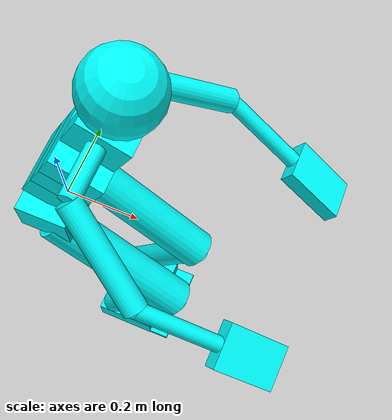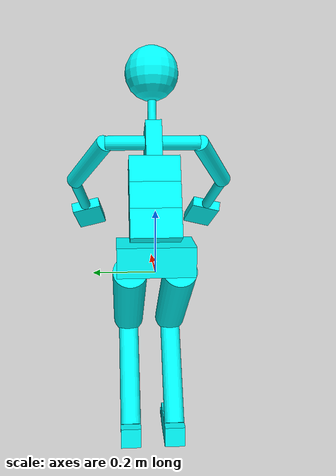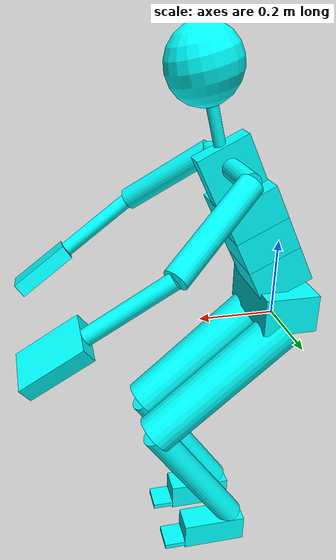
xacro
<?xml version='1.0' encoding='utf-8'?>
<robot name="seated_rider">
  <!-- Generated by scripts/generate_seated_rider.py from the uploaded colored 66-DoF URDF. Fixed preview pose; no pedaling/contact constraints. -->
  <link name="rider_Pelvis">
    <inertial>
      <mass value="4.976" />
      <origin xyz="0           0    0.049743" rpy="0 0 0" />
      <inertia ixx="0.029678" iyy="0.011854" izz="0.033653" ixy="0" ixz="0" iyz="0" />
    </inertial>
    <visual>
      <origin xyz="0           0    0.049743" rpy="0 0 0" />
      <geometry>
        <box size="0.13815     0.24914    0.097469" />
      </geometry>
      <material name="rider_Cyan">
        <color rgba="0 1.0 1.0 1.0" />
      </material>
    </visual>
    <collision>
      <origin xyz="0           0    0.049743" rpy="0 0 0" />
      <geometry>
        <box size="0.13815     0.24914    0.097469" />
      </geometry>
      <material name="rider_Cyan">
        <color rgba="0 1.0 1.0 1.0" />
      </material>
    </collision>
  </link>
  <link name="rider_L5_f1">
		</link>
  <link name="rider_L5_f2">
		</link>
  <link name="rider_L5">
    <inertial>
      <mass value="6.3444" />
      <origin xyz="0           0    0.047552" rpy="0 0 0" />
      <inertia ixx="0.018868" iyy="0.014872" izz="0.024177" ixy="0" ixz="0" iyz="0" />
    </inertial>
    <visual>
      <origin xyz="0           0    0.047552" rpy="0 0 0" />
      <geometry>
        <box size="0.13815     0.16323    0.095104" />
      </geometry>
      <material name="rider_Cyan">
        <color rgba="0 1.0 1.0 1.0" />
      </material>
    </visual>
    <collision>
      <origin xyz="0           0    0.047552" rpy="0 0 0" />
      <geometry>
        <box size="0.13815     0.16323    0.095104" />
      </geometry>
      <material name="rider_Cyan">
        <color rgba="0 1.0 1.0 1.0" />
      </material>
    </collision>
  </link>
  <link name="rider_L3_f1">
		</link>
  <link name="rider_L3_f2">
		</link>
  <link name="rider_L3">
    <inertial>
      <mass value="6.3444" />
      <origin xyz="0           0    0.042958" rpy="0 0 0" />
      <inertia ixx="0.017989" iyy="0.013993" izz="0.024177" ixy="0" ixz="0" iyz="0" />
    </inertial>
    <visual>
      <origin xyz="0           0    0.042958" rpy="0 0 0" />
      <geometry>
        <box size="0.13815     0.16323    0.085916" />
      </geometry>
      <material name="rider_Cyan">
        <color rgba="0 1.0 1.0 1.0" />
      </material>
    </visual>
    <collision>
      <origin xyz="0           0    0.042958" rpy="0 0 0" />
      <geometry>
        <box size="0.13815     0.16323    0.085916" />
      </geometry>
      <material name="rider_Cyan">
        <color rgba="0 1.0 1.0 1.0" />
      </material>
    </collision>
  </link>
  <link name="rider_T12_f1">
		</link>
  <link name="rider_T12_f2">
		</link>
  <link name="rider_T12">
    <inertial>
      <mass value="6.3444" />
      <origin xyz="0           0    0.042958" rpy="0 0 0" />
      <inertia ixx="0.017989" iyy="0.013993" izz="0.024177" ixy="0" ixz="0" iyz="0" />
    </inertial>
    <visual>
      <origin xyz="0           0    0.042958" rpy="0 0 0" />
      <geometry>
        <box size="0.13815     0.16323    0.085916" />
      </geometry>
      <material name="rider_Cyan">
        <color rgba="0 1.0 1.0 1.0" />
      </material>
    </visual>
    <collision>
      <origin xyz="0           0    0.042958" rpy="0 0 0" />
      <geometry>
        <box size="0.13815     0.16323    0.085916" />
      </geometry>
      <material name="rider_Cyan">
        <color rgba="0 1.0 1.0 1.0" />
      </material>
    </collision>
  </link>
  <link name="rider_T8_f1">
		</link>
  <link name="rider_T8_f2">
		</link>
  <link name="rider_T8">
    <inertial>
      <mass value="2.488" />
      <origin xyz="0           0    0.059874" rpy="0 0 0" />
      <inertia ixx="0.0035473" iyy="0.0067278" izz="0.0043289" ixy="0" ixz="0" iyz="0" />
    </inertial>
    <visual>
      <origin xyz="0           0    0.059874" rpy="0 0 0" />
      <geometry>
        <box size="0.13457    0.052626     0.11975" />
      </geometry>
      <material name="rider_Cyan">
        <color rgba="0 1.0 1.0 1.0" />
      </material>
    </visual>
    <collision>
      <origin xyz="0           0    0.059874" rpy="0 0 0" />
      <geometry>
        <box size="0.13457    0.052626     0.11975" />
      </geometry>
      <material name="rider_Cyan">
        <color rgba="0 1.0 1.0 1.0" />
      </material>
    </collision>
  </link>
  <link name="rider_Neck_f1">
		</link>
  <link name="rider_Neck_f2">
		</link>
  <link name="rider_Neck">
    <inertial>
      <mass value="0.7464" />
      <origin xyz="0           0    0.044626" rpy="0 0 0" />
      <inertia ixx="0.0006461" iyy="0.0006461" izz="0.00030124" ixy="0" ixz="0" iyz="0" />
    </inertial>
    <visual>
      <origin xyz="0           0    0.044626" rpy="0 0 0" />
      <geometry>
        <cylinder length="0.089252" radius="0.014205" />
      </geometry>
      <material name="rider_Cyan">
        <color rgba="0 1.0 1.0 1.0" />
      </material>
    </visual>
    <collision>
      <origin xyz="0           0    0.044626" rpy="0 0 0" />
      <geometry>
        <cylinder length="0.089252" radius="0.014205" />
      </geometry>
      <material name="rider_Cyan">
        <color rgba="0 1.0 1.0 1.0" />
      </material>
    </collision>
  </link>
  <link name="rider_Head_f1">
		</link>
  <link name="rider_Head_f2">
		</link>
  <link name="rider_Head">
    <inertial>
      <mass value="2.2392" />
      <origin xyz="0           0    0.089005" rpy="0 0 0" />
      <inertia ixx="0.0070955" iyy="0.0070955" izz="0.0070955" ixy="0" ixz="0" iyz="0" />
    </inertial>
    <visual>
      <origin xyz="0           0    0.089005" rpy="0 0 0" />
      <geometry>
        <sphere radius="0.089005" />
      </geometry>
      <material name="rider_Cyan">
        <color rgba="0 1.0 1.0 1.0" />
      </material>
    </visual>
    <collision>
      <origin xyz="0           0    0.089005" rpy="0 0 0" />
      <geometry>
        <sphere radius="0.089005" />
      </geometry>
      <material name="rider_Cyan">
        <color rgba="0 1.0 1.0 1.0" />
      </material>
    </collision>
  </link>
  <link name="rider_RightShoulder_f1">
		</link>
  <link name="rider_RightShoulder_f2">
		</link>
  <link name="rider_RightShoulder">
    <inertial>
      <mass value="1.9282" />
      <origin xyz="0   -0.065233           0" rpy="0 0 0" />
      <inertia ixx="0.0030029" iyy="0.00053578" izz="0.0030029" ixy="0" ixz="0" iyz="0" />
    </inertial>
    <visual>
      <origin xyz="0   -0.065233           0" rpy="1.5708 0 0" />
      <geometry>
        <cylinder length="0.13047" radius="0.023574" />
      </geometry>
      <material name="rider_Cyan">
        <color rgba="0 1.0 1.0 1.0" />
      </material>
    </visual>
    <collision>
      <origin xyz="0   -0.065233           0" rpy="1.5708 0 0" />
      <geometry>
        <cylinder length="0.13047" radius="0.023574" />
      </geometry>
      <material name="rider_Cyan">
        <color rgba="0 1.0 1.0 1.0" />
      </material>
    </collision>
  </link>
  <link name="rider_RightUpperArm_f1">
		</link>
  <link name="rider_RightUpperArm_f2">
		</link>
  <link name="rider_RightUpperArm">
    <inertial>
      <mass value="1.866" />
      <origin xyz="0    -0.13497           0" rpy="0 0 0" />
      <inertia ixx="0.011736" iyy="0.00080917" izz="0.011736" ixy="0" ixz="0" iyz="0" />
    </inertial>
    <visual>
      <origin xyz="0    -0.13497           0" rpy="1.5708 0 0" />
      <geometry>
        <cylinder length="0.26994" radius="0.029449" />
      </geometry>
      <material name="rider_Cyan">
        <color rgba="0 1.0 1.0 1.0" />
      </material>
    </visual>
    <collision>
      <origin xyz="0    -0.13497           0" rpy="1.5708 0 0" />
      <geometry>
        <cylinder length="0.26994" radius="0.029449" />
      </geometry>
      <material name="rider_Cyan">
        <color rgba="0 1.0 1.0 1.0" />
      </material>
    </collision>
  </link>
  <link name="rider_RightForeArm_f1">
		</link>
  <link name="rider_RightForeArm_f2">
		</link>
  <link name="rider_RightForeArm">
    <inertial>
      <mass value="1.244" />
      <origin xyz="0    -0.11124           0" rpy="0 0 0" />
      <inertia ixx="0.0052508" iyy="0.00023975" izz="0.0052508" ixy="0" ixz="0" iyz="0" />
    </inertial>
    <visual>
      <origin xyz="0    -0.11124           0" rpy="1.5708 0 0" />
      <geometry>
        <cylinder length="0.22247" radius="0.019633" />
      </geometry>
      <material name="rider_Cyan">
        <color rgba="0 1.0 1.0 1.0" />
      </material>
    </visual>
    <collision>
      <origin xyz="0    -0.11124           0" rpy="1.5708 0 0" />
      <geometry>
        <cylinder length="0.22247" radius="0.019633" />
      </geometry>
      <material name="rider_Cyan">
        <color rgba="0 1.0 1.0 1.0" />
      </material>
    </collision>
  </link>
  <link name="rider_RightHand_f1">
		</link>
  <link name="rider_RightHand_f2">
		</link>
  <link name="rider_RightHand">
    <inertial>
      <mass value="0.3732" />
      <origin xyz="0   -0.083588           0" rpy="0 0 0" />
      <inertia ixx="0.00091713" iyy="0.00043425" izz="0.0012555" ixy="0" ixz="0" iyz="0" />
    </inertial>
    <visual>
      <origin xyz="0   -0.083588           0" rpy="0 0 0" />
      <geometry>
        <box size="0.11145     0.16718    0.039266" />
      </geometry>
      <material name="rider_Cyan">
        <color rgba="0 1.0 1.0 1.0" />
      </material>
    </visual>
    <collision>
      <origin xyz="0   -0.083588           0" rpy="0 0 0" />
      <geometry>
        <box size="0.11145     0.16718    0.039266" />
      </geometry>
      <material name="rider_Cyan">
        <color rgba="0 1.0 1.0 1.0" />
      </material>
    </collision>
  </link>
  <link name="rider_RightHandCOM">
    <inertial>
      <mass value="0.00001" />
      <origin xyz="0 0 0" rpy="0 0 0" />
      <inertia ixx="0" iyy="0" izz="0" ixy="0" ixz="0" iyz="0" />
    </inertial>
  </link>
  <link name="rider_LeftShoulder_f1">
		</link>
  <link name="rider_LeftShoulder_f2">
		</link>
  <link name="rider_LeftShoulder">
    <inertial>
      <mass value="1.9282" />
      <origin xyz="0    0.065233           0" rpy="0 0 0" />
      <inertia ixx="0.0030029" iyy="0.00053578" izz="0.0030029" ixy="0" ixz="0" iyz="0" />
    </inertial>
    <visual>
      <origin xyz="0    0.065233           0" rpy="1.5708 0 0" />
      <geometry>
        <cylinder length="0.13047" radius="0.023574" />
      </geometry>
      <material name="rider_Cyan">
        <color rgba="0 1.0 1.0 1.0" />
      </material>
    </visual>
    <collision>
      <origin xyz="0    0.065233           0" rpy="1.5708 0 0" />
      <geometry>
        <cylinder length="0.13047" radius="0.023574" />
      </geometry>
      <material name="rider_Cyan">
        <color rgba="0 1.0 1.0 1.0" />
      </material>
    </collision>
  </link>
  <link name="rider_LeftUpperArm_f1">
		</link>
  <link name="rider_LeftUpperArm_f2">
		</link>
  <link name="rider_LeftUpperArm">
    <inertial>
      <mass value="1.866" />
      <origin xyz="0     0.13497           0" rpy="0 0 0" />
      <inertia ixx="0.011736" iyy="0.00080917" izz="0.011736" ixy="0" ixz="0" iyz="0" />
    </inertial>
    <visual>
      <origin xyz="0     0.13497           0" rpy="1.5708 0 0" />
      <geometry>
        <cylinder length="0.26994" radius="0.029449" />
      </geometry>
      <material name="rider_Cyan">
        <color rgba="0 1.0 1.0 1.0" />
      </material>
    </visual>
    <collision>
      <origin xyz="0     0.13497           0" rpy="1.5708 0 0" />
      <geometry>
        <cylinder length="0.26994" radius="0.029449" />
      </geometry>
      <material name="rider_Cyan">
        <color rgba="0 1.0 1.0 1.0" />
      </material>
    </collision>
  </link>
  <link name="rider_LeftForeArm_f1">
		</link>
  <link name="rider_LeftForeArm_f2">
		</link>
  <link name="rider_LeftForeArm">
    <inertial>
      <mass value="1.244" />
      <origin xyz="0     0.11124           0" rpy="0 0 0" />
      <inertia ixx="0.0052508" iyy="0.00023975" izz="0.0052508" ixy="0" ixz="0" iyz="0" />
    </inertial>
    <visual>
      <origin xyz="0     0.11124           0" rpy="1.5708 0 0" />
      <geometry>
        <cylinder length="0.22247" radius="0.019633" />
      </geometry>
      <material name="rider_Cyan">
        <color rgba="0 1.0 1.0 1.0" />
      </material>
    </visual>
    <collision>
      <origin xyz="0     0.11124           0" rpy="1.5708 0 0" />
      <geometry>
        <cylinder length="0.22247" radius="0.019633" />
      </geometry>
      <material name="rider_Cyan">
        <color rgba="0 1.0 1.0 1.0" />
      </material>
    </collision>
  </link>
  <link name="rider_LeftHand_f1">
		</link>
  <link name="rider_LeftHand_f2">
		</link>
  <link name="rider_LeftHand">
    <inertial>
      <mass value="0.3732" />
      <origin xyz="0    0.083588           0" rpy="0 0 0" />
      <inertia ixx="0.00091713" iyy="0.00043425" izz="0.0012555" ixy="0" ixz="0" iyz="0" />
    </inertial>
    <visual>
      <origin xyz="0    0.083588           0" rpy="0 0 0" />
      <geometry>
        <box size="0.11145     0.16718    0.039266" />
      </geometry>
      <material name="rider_Cyan">
        <color rgba="0 1.0 1.0 1.0" />
      </material>
    </visual>
    <collision>
      <origin xyz="0    0.083588           0" rpy="0 0 0" />
      <geometry>
        <box size="0.11145     0.16718    0.039266" />
      </geometry>
      <material name="rider_Cyan">
        <color rgba="0 1.0 1.0 1.0" />
      </material>
    </collision>
  </link>
  <link name="rider_LeftHandCOM">
    <inertial>
      <mass value="0.00001" />
      <origin xyz="0 0 0" rpy="0 0 0" />
      <inertia ixx="0" iyy="0" izz="0" ixy="0" ixz="0" iyz="0" />
    </inertial>
  </link>
  <link name="rider_RightUpperLeg_f1">
		</link>
  <link name="rider_RightUpperLeg_f2">
		</link>
  <link name="rider_RightUpperLeg">
    <inertial>
      <mass value="7.775" />
      <origin xyz="0           0    -0.22449" rpy="0 0 0" />
      <inertia ixx="0.13681" iyy="0.13681" izz="0.01241" ixy="0" ixz="0" iyz="0" />
    </inertial>
    <visual>
      <origin xyz="0           0    -0.22449" rpy="0 0 0" />
      <geometry>
        <cylinder length="0.44898" radius="0.0565" />
      </geometry>
      <material name="rider_Cyan">
        <color rgba="0 1.0 1.0 1.0" />
      </material>
    </visual>
    <collision>
      <origin xyz="0           0    -0.22449" rpy="0 0 0" />
      <geometry>
        <cylinder length="0.44898" radius="0.0565" />
      </geometry>
      <material name="rider_Cyan">
        <color rgba="0 1.0 1.0 1.0" />
      </material>
    </collision>
  </link>
  <link name="rider_RightLowerLeg_f1">
		</link>
  <link name="rider_RightLowerLeg_f2">
		</link>
  <link name="rider_RightLowerLeg">
    <inertial>
      <mass value="2.2703" />
      <origin xyz="0           0    -0.20304" rpy="0 0 0" />
      <inertia ixx="0.031992" iyy="0.031992" izz="0.0015867" ixy="0" ixz="0" iyz="0" />
    </inertial>
    <visual>
      <origin xyz="0           0    -0.20304" rpy="0 0 0" />
      <geometry>
        <cylinder length="0.40608" radius="0.037388" />
      </geometry>
      <material name="rider_Cyan">
        <color rgba="0 1.0 1.0 1.0" />
      </material>
    </visual>
    <collision>
      <origin xyz="0           0    -0.20304" rpy="0 0 0" />
      <geometry>
        <cylinder length="0.40608" radius="0.037388" />
      </geometry>
      <material name="rider_Cyan">
        <color rgba="0 1.0 1.0 1.0" />
      </material>
    </collision>
  </link>
  <link name="rider_RightFoot_f1">
		</link>
  <link name="rider_RightFoot_f2">
		</link>
  <link name="rider_RightFoot">
    <inertial>
      <mass value="0.8086" />
      <origin xyz="0.054652           0   -0.039254" rpy="0 0 0" />
      <inertia ixx="0.00079209" iyy="0.0025944" izz="0.0025558" ixy="0" ixz="0" iyz="0" />
    </inertial>
    <visual>
      <origin xyz="0.054652           0   -0.039254" rpy="0 0 0" />
      <geometry>
        <box size="0.17983    0.074775    0.078509" />
      </geometry>
      <material name="rider_Cyan">
        <color rgba="0 1.0 1.0 1.0" />
      </material>
    </visual>
    <collision>
      <origin xyz="0.054652           0   -0.039254" rpy="0 0 0" />
      <geometry>
        <box size="0.17983    0.074775    0.078509" />
      </geometry>
      <material name="rider_Cyan">
        <color rgba="0 1.0 1.0 1.0" />
      </material>
    </collision>
  </link>
  <link name="rider_RightToe_f1">
		</link>
  <link name="rider_RightToe_f2">
		</link>
  <link name="rider_RightToe">
    <inertial>
      <mass value="0.0933" />
      <origin xyz="0.030086           0           0" rpy="0 0 0" />
      <inertia ixx="4.5038e-05" iyy="2.9717e-05" izz="7.1624e-05" ixy="0" ixz="0" iyz="0" />
    </inertial>
    <visual>
      <origin xyz="0.030086           0           0" rpy="0 0 0" />
      <geometry>
        <box size="0.060173    0.074775    0.014191" />
      </geometry>
      <material name="rider_Cyan">
        <color rgba="0 1.0 1.0 1.0" />
      </material>
    </visual>
    <collision>
      <origin xyz="0.030086           0           0" rpy="0 0 0" />
      <geometry>
        <box size="0.060173    0.074775    0.014191" />
      </geometry>
      <material name="rider_Cyan">
        <color rgba="0 1.0 1.0 1.0" />
      </material>
    </collision>
  </link>
  <link name="rider_LeftUpperLeg_f1">
		</link>
  <link name="rider_LeftUpperLeg_f2">
		</link>
  <link name="rider_LeftUpperLeg">
    <inertial>
      <mass value="7.775" />
      <origin xyz="0           0    -0.22449" rpy="0 0 0" />
      <inertia ixx="0.13681" iyy="0.13681" izz="0.01241" ixy="0" ixz="0" iyz="0" />
    </inertial>
    <visual>
      <origin xyz="0           0    -0.22449" rpy="0 0 0" />
      <geometry>
        <cylinder length="0.44898" radius="0.0565" />
      </geometry>
      <material name="rider_Cyan">
        <color rgba="0 1.0 1.0 1.0" />
      </material>
    </visual>
    <collision>
      <origin xyz="0           0    -0.22449" rpy="0 0 0" />
      <geometry>
        <cylinder length="0.44898" radius="0.0565" />
      </geometry>
      <material name="rider_Cyan">
        <color rgba="0 1.0 1.0 1.0" />
      </material>
    </collision>
  </link>
  <link name="rider_LeftLowerLeg_f1">
		</link>
  <link name="rider_LeftLowerLeg_f2">
		</link>
  <link name="rider_LeftLowerLeg">
    <inertial>
      <mass value="2.2703" />
      <origin xyz="0           0    -0.20304" rpy="0 0 0" />
      <inertia ixx="0.031992" iyy="0.031992" izz="0.0015867" ixy="0" ixz="0" iyz="0" />
    </inertial>
    <visual>
      <origin xyz="0           0    -0.20304" rpy="0 0 0" />
      <geometry>
        <cylinder length="0.40608" radius="0.037388" />
      </geometry>
      <material name="rider_Cyan">
        <color rgba="0 1.0 1.0 1.0" />
      </material>
    </visual>
    <collision>
      <origin xyz="0           0    -0.20304" rpy="0 0 0" />
      <geometry>
        <cylinder length="0.40608" radius="0.037388" />
      </geometry>
      <material name="rider_Cyan">
        <color rgba="0 1.0 1.0 1.0" />
      </material>
    </collision>
  </link>
  <link name="rider_LeftFoot_f1">
		</link>
  <link name="rider_LeftFoot_f2">
		</link>
  <link name="rider_LeftFoot">
    <inertial>
      <mass value="0.8086" />
      <origin xyz="0.054652           0   -0.039254" rpy="0 0 0" />
      <inertia ixx="0.00079209" iyy="0.0025944" izz="0.0025558" ixy="0" ixz="0" iyz="0" />
    </inertial>
    <visual>
      <origin xyz="0.054652           0   -0.039254" rpy="0 0 0" />
      <geometry>
        <box size="0.17983    0.074775    0.078509" />
      </geometry>
      <material name="rider_Cyan">
        <color rgba="0 1.0 1.0 1.0" />
      </material>
    </visual>
    <collision>
      <origin xyz="0.054652           0   -0.039254" rpy="0 0 0" />
      <geometry>
        <box size="0.17983    0.074775    0.078509" />
      </geometry>
      <material name="rider_Cyan">
        <color rgba="0 1.0 1.0 1.0" />
      </material>
    </collision>
  </link>
  <link name="rider_LeftToe_f1">
		</link>
  <link name="rider_LeftToe_f2">
		</link>
  <link name="rider_LeftToe">
    <inertial>
      <mass value="0.0933" />
      <origin xyz="0.030086           0           0" rpy="0 0 0" />
      <inertia ixx="4.5038e-05" iyy="2.9717e-05" izz="7.1624e-05" ixy="0" ixz="0" iyz="0" />
    </inertial>
    <visual>
      <origin xyz="0.030086           0           0" rpy="0 0 0" />
      <geometry>
        <box size="0.060173    0.074775    0.014191" />
      </geometry>
      <material name="rider_Cyan">
        <color rgba="0 1.0 1.0 1.0" />
      </material>
    </visual>
    <collision>
      <origin xyz="0.030086           0           0" rpy="0 0 0" />
      <geometry>
        <box size="0.060173    0.074775    0.014191" />
      </geometry>
      <material name="rider_Cyan">
        <color rgba="0 1.0 1.0 1.0" />
      </material>
    </collision>
  </link>
  <joint name="rider_jL5S1_rotx" type="fixed">
    <origin xyz="-0.000206           0    0.098478" rpy="0.000000000 0.000000000 0.000000000" />
    <parent link="rider_Pelvis" />
    <child link="rider_L5_f1" />
  </joint>
  <joint name="rider_jL5S1_roty" type="fixed">
    <origin xyz="0 0 0" rpy="0.000000000 0.450000000 0.000000000" />
    <parent link="rider_L5_f1" />
    <child link="rider_L5_f2" />
  </joint>
  <joint name="rider_jL5S1_rotz" type="fixed">
    <origin xyz="0 0 0" rpy="0.000000000 0.000000000 0.000000000" />
    <parent link="rider_L5_f2" />
    <child link="rider_L5" />
  </joint>
  <joint name="rider_jL4L3_rotx" type="fixed">
    <origin xyz="0.000374           0    0.095104" rpy="0.000000000 0.000000000 0.000000000" />
    <parent link="rider_L5" />
    <child link="rider_L3_f1" />
  </joint>
  <joint name="rider_jL4L3_roty" type="fixed">
    <origin xyz="0 0 0" rpy="0.000000000 0.000000000 0.000000000" />
    <parent link="rider_L3_f1" />
    <child link="rider_L3_f2" />
  </joint>
  <joint name="rider_jL4L3_rotz" type="fixed">
    <origin xyz="0 0 0" rpy="0.000000000 0.000000000 0.000000000" />
    <parent link="rider_L3_f2" />
    <child link="rider_L3" />
  </joint>
  <joint name="rider_jL1T12_rotx" type="fixed">
    <origin xyz="0           0    0.085916" rpy="0.000000000 0.000000000 0.000000000" />
    <parent link="rider_L3" />
    <child link="rider_T12_f1" />
  </joint>
  <joint name="rider_jL1T12_roty" type="fixed">
    <origin xyz="0 0 0" rpy="0.000000000 0.000000000 0.000000000" />
    <parent link="rider_T12_f1" />
    <child link="rider_T12_f2" />
  </joint>
  <joint name="rider_jL1T12_rotz" type="fixed">
    <origin xyz="0 0 0" rpy="0.000000000 0.000000000 0.000000000" />
    <parent link="rider_T12_f2" />
    <child link="rider_T12" />
  </joint>
  <joint name="rider_jT9T8_rotx" type="fixed">
    <origin xyz="0           0    0.085916" rpy="0.000000000 0.000000000 0.000000000" />
    <parent link="rider_T12" />
    <child link="rider_T8_f1" />
  </joint>
  <joint name="rider_jT9T8_roty" type="fixed">
    <origin xyz="0 0 0" rpy="0.000000000 0.000000000 0.000000000" />
    <parent link="rider_T8_f1" />
    <child link="rider_T8_f2" />
  </joint>
  <joint name="rider_jT9T8_rotz" type="fixed">
    <origin xyz="0 0 0" rpy="0.000000000 0.000000000 0.000000000" />
    <parent link="rider_T8_f2" />
    <child link="rider_T8" />
  </joint>
  <joint name="rider_jT1C7_rotx" type="fixed">
    <origin xyz="0           0     0.11975" rpy="0.000000000 0.000000000 0.000000000" />
    <parent link="rider_T8" />
    <child link="rider_Neck_f1" />
  </joint>
  <joint name="rider_jT1C7_roty" type="fixed">
    <origin xyz="0 0 0" rpy="0.000000000 -0.200000000 0.000000000" />
    <parent link="rider_Neck_f1" />
    <child link="rider_Neck_f2" />
  </joint>
  <joint name="rider_jT1C7_rotz" type="fixed">
    <origin xyz="0 0 0" rpy="0.000000000 0.000000000 0.000000000" />
    <parent link="rider_Neck_f2" />
    <child link="rider_Neck" />
  </joint>
  <joint name="rider_jC1Head_rotx" type="fixed">
    <origin xyz="0.000152           0    0.089252" rpy="0.000000000 0.000000000 0.000000000" />
    <parent link="rider_Neck" />
    <child link="rider_Head_f1" />
  </joint>
  <joint name="rider_jC1Head_roty" type="fixed">
    <origin xyz="0 0 0" rpy="0.000000000 0.000000000 0.000000000" />
    <parent link="rider_Head_f1" />
    <child link="rider_Head_f2" />
  </joint>
  <joint name="rider_jC1Head_rotz" type="fixed">
    <origin xyz="0 0 0" rpy="0.000000000 0.000000000 0.000000000" />
    <parent link="rider_Head_f2" />
    <child link="rider_Head" />
  </joint>
  <joint name="rider_jRightC7Shoulder_rotx" type="fixed">
    <origin xyz="0   -0.026313    0.067052" rpy="0.000000000 0.000000000 0.000000000" />
    <parent link="rider_T8" />
    <child link="rider_RightShoulder_f1" />
  </joint>
  <joint name="rider_jRightC7Shoulder_roty" type="fixed">
    <origin xyz="0 0 0" rpy="0.000000000 0.000000000 0.000000000" />
    <parent link="rider_RightShoulder_f1" />
    <child link="rider_RightShoulder_f2" />
  </joint>
  <joint name="rider_jRightC7Shoulder_rotz" type="fixed">
    <origin xyz="0 0 0" rpy="0.000000000 0.000000000 0.000000000" />
    <parent link="rider_RightShoulder_f2" />
    <child link="rider_RightShoulder" />
  </joint>
  <joint name="rider_jRightShoulder_rotx" type="fixed">
    <origin xyz="0    -0.13047           0" rpy="0.195464391 0.000000000 0.000000000" />
    <parent link="rider_RightShoulder" />
    <child link="rider_RightUpperArm_f1" />
  </joint>
  <joint name="rider_jRightShoulder_roty" type="fixed">
    <origin xyz="0 0 0" rpy="0.000000000 0.118417821 0.000000000" />
    <parent link="rider_RightUpperArm_f1" />
    <child link="rider_RightUpperArm_f2" />
  </joint>
  <joint name="rider_jRightShoulder_rotz" type="fixed">
    <origin xyz="0 0 0" rpy="0.000000000 0.000000000 1.085462029" />
    <parent link="rider_RightUpperArm_f2" />
    <child link="rider_RightUpperArm" />
  </joint>
  <joint name="rider_jRightElbow_rotx" type="fixed">
    <origin xyz="0    -0.26994           0" rpy="0.045104785 0.000000000 0.000000000" />
    <parent link="rider_RightUpperArm" />
    <child link="rider_RightForeArm_f1" />
  </joint>
  <joint name="rider_jRightElbow_roty" type="fixed">
    <origin xyz="0 0 0" rpy="0.000000000 0.021333585 0.000000000" />
    <parent link="rider_RightForeArm_f1" />
    <child link="rider_RightForeArm_f2" />
  </joint>
  <joint name="rider_jRightElbow_rotz" type="fixed">
    <origin xyz="0 0 0" rpy="0.000000000 0.000000000 0.576332812" />
    <parent link="rider_RightForeArm_f2" />
    <child link="rider_RightForeArm" />
  </joint>
  <joint name="rider_jRightWrist_rotx" type="fixed">
    <origin xyz="7.7e-05    -0.22247           0" rpy="0.000000000 0.000000000 0.000000000" />
    <parent link="rider_RightForeArm" />
    <child link="rider_RightHand_f1" />
  </joint>
  <joint name="rider_jRightWrist_roty" type="fixed">
    <origin xyz="0 0 0" rpy="0.000000000 0.000000000 0.000000000" />
    <parent link="rider_RightHand_f1" />
    <child link="rider_RightHand_f2" />
  </joint>
  <joint name="rider_jRightWrist_rotz" type="fixed">
    <origin xyz="0 0 0" rpy="0.000000000 0.000000000 0.000000000" />
    <parent link="rider_RightHand_f2" />
    <child link="rider_RightHand" />
  </joint>
  <joint name="rider_jRightHandCOM" type="fixed">
    <origin xyz="0 -0.096206 0" rpy="0 0 0" />
    <parent link="rider_RightHand" />
    <child link="rider_RightHandCOM" />
  </joint>
  <joint name="rider_jLeftC7Shoulder_rotx" type="fixed">
    <origin xyz="0    0.026313    0.067052" rpy="0.000000000 0.000000000 0.000000000" />
    <parent link="rider_T8" />
    <child link="rider_LeftShoulder_f1" />
  </joint>
  <joint name="rider_jLeftC7Shoulder_roty" type="fixed">
    <origin xyz="0 0 0" rpy="0.000000000 0.000000000 0.000000000" />
    <parent link="rider_LeftShoulder_f1" />
    <child link="rider_LeftShoulder_f2" />
  </joint>
  <joint name="rider_jLeftC7Shoulder_rotz" type="fixed">
    <origin xyz="0 0 0" rpy="0.000000000 0.000000000 0.000000000" />
    <parent link="rider_LeftShoulder_f2" />
    <child link="rider_LeftShoulder" />
  </joint>
  <joint name="rider_jLeftShoulder_rotx" type="fixed">
    <origin xyz="0     0.13047           0" rpy="-0.195472559 0.000000000 0.000000000" />
    <parent link="rider_LeftShoulder" />
    <child link="rider_LeftUpperArm_f1" />
  </joint>
  <joint name="rider_jLeftShoulder_roty" type="fixed">
    <origin xyz="0 0 0" rpy="0.000000000 0.118413542 0.000000000" />
    <parent link="rider_LeftUpperArm_f1" />
    <child link="rider_LeftUpperArm_f2" />
  </joint>
  <joint name="rider_jLeftShoulder_rotz" type="fixed">
    <origin xyz="0 0 0" rpy="0.000000000 0.000000000 -1.085461063" />
    <parent link="rider_LeftUpperArm_f2" />
    <child link="rider_LeftUpperArm" />
  </joint>
  <joint name="rider_jLeftElbow_rotx" type="fixed">
    <origin xyz="0     0.26994           0" rpy="-0.045122762 0.000000000 0.000000000" />
    <parent link="rider_LeftUpperArm" />
    <child link="rider_LeftForeArm_f1" />
  </joint>
  <joint name="rider_jLeftElbow_roty" type="fixed">
    <origin xyz="0 0 0" rpy="0.000000000 0.021315130 0.000000000" />
    <parent link="rider_LeftForeArm_f1" />
    <child link="rider_LeftForeArm_f2" />
  </joint>
  <joint name="rider_jLeftElbow_rotz" type="fixed">
    <origin xyz="0 0 0" rpy="0.000000000 0.000000000 -0.576332018" />
    <parent link="rider_LeftForeArm_f2" />
    <child link="rider_LeftForeArm" />
  </joint>
  <joint name="rider_jLeftWrist_rotx" type="fixed">
    <origin xyz="7.7e-05     0.22247           0" rpy="0.000000000 0.000000000 0.000000000" />
    <parent link="rider_LeftForeArm" />
    <child link="rider_LeftHand_f1" />
  </joint>
  <joint name="rider_jLeftWrist_roty" type="fixed">
    <origin xyz="0 0 0" rpy="0.000000000 0.000000000 0.000000000" />
    <parent link="rider_LeftHand_f1" />
    <child link="rider_LeftHand_f2" />
  </joint>
  <joint name="rider_jLeftWrist_rotz" type="fixed">
    <origin xyz="0 0 0" rpy="0.000000000 0.000000000 0.000000000" />
    <parent link="rider_LeftHand_f2" />
    <child link="rider_LeftHand" />
  </joint>
  <joint name="rider_jLeftHandCOM" type="fixed">
    <origin xyz="0 0.096206 0" rpy="0 0 0" />
    <parent link="rider_LeftHand" />
    <child link="rider_LeftHandCOM" />
  </joint>
  <joint name="rider_jRightHip_rotx" type="fixed">
    <origin xyz="0.000103   -0.081614    0.001009" rpy="0.000000000 0.000000000 0.000000000" />
    <parent link="rider_Pelvis" />
    <child link="rider_RightUpperLeg_f1" />
  </joint>
  <joint name="rider_jRightHip_roty" type="fixed">
    <origin xyz="0 0 0" rpy="0.000000000 -0.850000000 0.000000000" />
    <parent link="rider_RightUpperLeg_f1" />
    <child link="rider_RightUpperLeg_f2" />
  </joint>
  <joint name="rider_jRightHip_rotz" type="fixed">
    <origin xyz="0 0 0" rpy="0.000000000 0.000000000 0.000000000" />
    <parent link="rider_RightUpperLeg_f2" />
    <child link="rider_RightUpperLeg" />
  </joint>
  <joint name="rider_jRightKnee_rotx" type="fixed">
    <origin xyz="3.6e-05           0    -0.44898" rpy="0.000000000 0.000000000 0.000000000" />
    <parent link="rider_RightUpperLeg" />
    <child link="rider_RightLowerLeg_f1" />
  </joint>
  <joint name="rider_jRightKnee_roty" type="fixed">
    <origin xyz="0 0 0" rpy="0.000000000 1.450000000 0.000000000" />
    <parent link="rider_RightLowerLeg_f1" />
    <child link="rider_RightLowerLeg_f2" />
  </joint>
  <joint name="rider_jRightKnee_rotz" type="fixed">
    <origin xyz="0 0 0" rpy="0.000000000 0.000000000 0.000000000" />
    <parent link="rider_RightLowerLeg_f2" />
    <child link="rider_RightLowerLeg" />
  </joint>
  <joint name="rider_jRightAnkle_rotx" type="fixed">
    <origin xyz="0.000205           0    -0.40608" rpy="0.000000000 0.000000000 0.000000000" />
    <parent link="rider_RightLowerLeg" />
    <child link="rider_RightFoot_f1" />
  </joint>
  <joint name="rider_jRightAnkle_roty" type="fixed">
    <origin xyz="0 0 0" rpy="0.000000000 -0.600000000 0.000000000" />
    <parent link="rider_RightFoot_f1" />
    <child link="rider_RightFoot_f2" />
  </joint>
  <joint name="rider_jRightAnkle_rotz" type="fixed">
    <origin xyz="0 0 0" rpy="0.000000000 0.000000000 0.000000000" />
    <parent link="rider_RightFoot_f2" />
    <child link="rider_RightFoot" />
  </joint>
  <joint name="rider_jRightBallFoot_rotx" type="fixed">
    <origin xyz="0.14456           0   -0.064752" rpy="0.000000000 0.000000000 0.000000000" />
    <parent link="rider_RightFoot" />
    <child link="rider_RightToe_f1" />
  </joint>
  <joint name="rider_jRightBallFoot_roty" type="fixed">
    <origin xyz="0 0 0" rpy="0.000000000 0.000000000 0.000000000" />
    <parent link="rider_RightToe_f1" />
    <child link="rider_RightToe_f2" />
  </joint>
  <joint name="rider_jRightBallFoot_rotz" type="fixed">
    <origin xyz="0 0 0" rpy="0.000000000 0.000000000 0.000000000" />
    <parent link="rider_RightToe_f2" />
    <child link="rider_RightToe" />
  </joint>
  <joint name="rider_jLeftHip_rotx" type="fixed">
    <origin xyz="0.000103    0.081614    0.001009" rpy="0.000000000 0.000000000 0.000000000" />
    <parent link="rider_Pelvis" />
    <child link="rider_LeftUpperLeg_f1" />
  </joint>
  <joint name="rider_jLeftHip_roty" type="fixed">
    <origin xyz="0 0 0" rpy="0.000000000 -0.850000000 0.000000000" />
    <parent link="rider_LeftUpperLeg_f1" />
    <child link="rider_LeftUpperLeg_f2" />
  </joint>
  <joint name="rider_jLeftHip_rotz" type="fixed">
    <origin xyz="0 0 0" rpy="0.000000000 0.000000000 0.000000000" />
    <parent link="rider_LeftUpperLeg_f2" />
    <child link="rider_LeftUpperLeg" />
  </joint>
  <joint name="rider_jLeftKnee_rotx" type="fixed">
    <origin xyz="3.6e-05           0    -0.44898" rpy="0.000000000 0.000000000 0.000000000" />
    <parent link="rider_LeftUpperLeg" />
    <child link="rider_LeftLowerLeg_f1" />
  </joint>
  <joint name="rider_jLeftKnee_roty" type="fixed">
    <origin xyz="0 0 0" rpy="0.000000000 1.450000000 0.000000000" />
    <parent link="rider_LeftLowerLeg_f1" />
    <child link="rider_LeftLowerLeg_f2" />
  </joint>
  <joint name="rider_jLeftKnee_rotz" type="fixed">
    <origin xyz="0 0 0" rpy="0.000000000 0.000000000 0.000000000" />
    <parent link="rider_LeftLowerLeg_f2" />
    <child link="rider_LeftLowerLeg" />
  </joint>
  <joint name="rider_jLeftAnkle_rotx" type="fixed">
    <origin xyz="0.000205           0    -0.40608" rpy="0.000000000 0.000000000 0.000000000" />
    <parent link="rider_LeftLowerLeg" />
    <child link="rider_LeftFoot_f1" />
  </joint>
  <joint name="rider_jLeftAnkle_roty" type="fixed">
    <origin xyz="0 0 0" rpy="0.000000000 -0.600000000 0.000000000" />
    <parent link="rider_LeftFoot_f1" />
    <child link="rider_LeftFoot_f2" />
  </joint>
  <joint name="rider_jLeftAnkle_rotz" type="fixed">
    <origin xyz="0 0 0" rpy="0.000000000 0.000000000 0.000000000" />
    <parent link="rider_LeftFoot_f2" />
    <child link="rider_LeftFoot" />
  </joint>
  <joint name="rider_jLeftBallFoot_rotx" type="fixed">
    <origin xyz="0.14456           0   -0.064752" rpy="0.000000000 0.000000000 0.000000000" />
    <parent link="rider_LeftFoot" />
    <child link="rider_LeftToe_f1" />
  </joint>
  <joint name="rider_jLeftBallFoot_roty" type="fixed">
    <origin xyz="0 0 0" rpy="0.000000000 0.000000000 0.000000000" />
    <parent link="rider_LeftToe_f1" />
    <child link="rider_LeftToe_f2" />
  </joint>
  <joint name="rider_jLeftBallFoot_rotz" type="fixed">
    <origin xyz="0 0 0" rpy="0.000000000 0.000000000 0.000000000" />
    <parent link="rider_LeftToe_f2" />
    <child link="rider_LeftToe" />
  </joint>
</robot>
